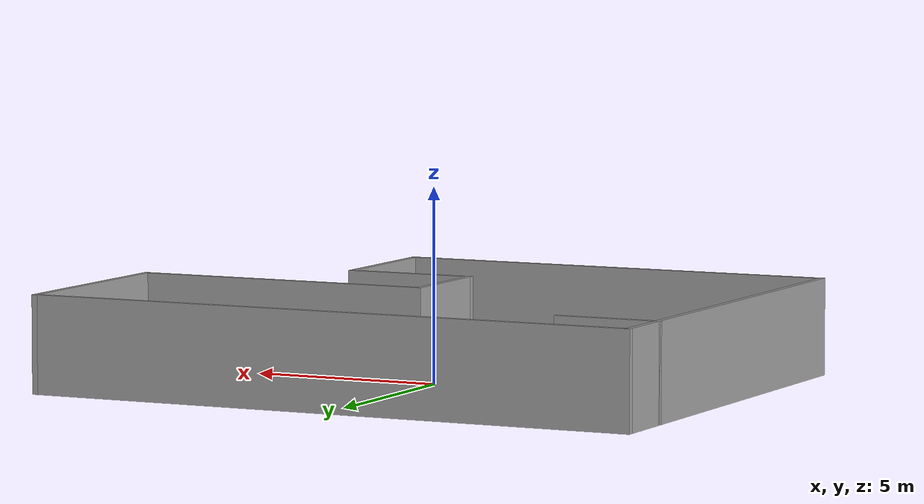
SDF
<?xml version='1.0'?>
<sdf version='1.6'>
  <model name='basic_model'>
    <model name='basic_model.jpg'>
      <pose frame=''>0 3e-06 0 0 -0 0</pose>
      <link name='Wall_29'>
        <collision name='Wall_29_Collision'>
          <geometry>
            <box>
              <size>10.5 0.15 2.5</size>
            </box>
          </geometry>
          <pose frame=''>0 0 1.25 0 -0 0</pose>
        </collision>
        <visual name='Wall_29_Visual'>
          <pose frame=''>0 0 1.25 0 -0 0</pose>
          <geometry>
            <box>
              <size>10.5 0.15 2.5</size>
            </box>
          </geometry>
          <material>
            <script>
              <uri>file://media/materials/scripts/gazebo.material</uri>
              <name>Gazebo/Grey</name>
            </script>
            <ambient>1 1 1 1</ambient>
          </material>
          <meta>
            <layer>0</layer>
          </meta>
        </visual>
        <pose frame=''>-8.05 -0.85 0 0 -0 -1.5708</pose>
      </link>
      <link name='Wall_30'>
        <collision name='Wall_30_Collision'>
          <geometry>
            <box>
              <size>11.75 0.15 2.5</size>
            </box>
          </geometry>
          <pose frame=''>0 0 1.25 0 -0 0</pose>
        </collision>
        <visual name='Wall_30_Visual'>
          <pose frame=''>0 0 1.25 0 -0 0</pose>
          <geometry>
            <box>
              <size>11.75 0.15 2.5</size>
            </box>
          </geometry>
          <material>
            <script>
              <uri>file://media/materials/scripts/gazebo.material</uri>
              <name>Gazebo/Grey</name>
            </script>
            <ambient>1 1 1 1</ambient>
          </material>
          <meta>
            <layer>0</layer>
          </meta>
        </visual>
        <pose frame=''>-2.25 -6.025 0 0 -0 0</pose>
      </link>
      <link name='Wall_31'>
        <collision name='Wall_31_Collision'>
          <geometry>
            <box>
              <size>3.75 0.15 2.5</size>
            </box>
          </geometry>
          <pose frame=''>0 0 1.25 0 -0 0</pose>
        </collision>
        <visual name='Wall_31_Visual'>
          <pose frame=''>0 0 1.25 0 -0 0</pose>
          <geometry>
            <box>
              <size>3.75 0.15 2.5</size>
            </box>
          </geometry>
          <material>
            <script>
              <uri>file://media/materials/scripts/gazebo.material</uri>
              <name>Gazebo/Grey</name>
            </script>
            <ambient>1 1 1 1</ambient>
          </material>
          <meta>
            <layer>0</layer>
          </meta>
        </visual>
        <pose frame=''>3.55 -4.225 0 0 -0 1.5708</pose>
      </link>
      <link name='Wall_32'>
        <collision name='Wall_32_Collision'>
          <geometry>
            <box>
              <size>3.5 0.15 2.5</size>
            </box>
          </geometry>
          <pose frame=''>0 0 1.25 0 -0 0</pose>
        </collision>
        <visual name='Wall_32_Visual'>
          <pose frame=''>0 0 1.25 0 -0 0</pose>
          <geometry>
            <box>
              <size>3.5 0.15 2.5</size>
            </box>
          </geometry>
          <material>
            <script>
              <uri>file://media/materials/scripts/gazebo.material</uri>
              <name>Gazebo/Grey</name>
            </script>
            <ambient>1 1 1 1</ambient>
          </material>
          <meta>
            <layer>0</layer>
          </meta>
        </visual>
        <pose frame=''>1.875 -2.425 0 0 -0 3.14159</pose>
      </link>
      <link name='Wall_33'>
        <collision name='Wall_33_Collision'>
          <geometry>
            <box>
              <size>3 0.15 2.5</size>
            </box>
          </geometry>
          <pose frame=''>0 0 1.25 0 -0 0</pose>
        </collision>
        <visual name='Wall_33_Visual'>
          <pose frame=''>0 0 1.25 0 -0 0</pose>
          <geometry>
            <box>
              <size>3 0.15 2.5</size>
            </box>
          </geometry>
          <material>
            <script>
              <uri>file://media/materials/scripts/gazebo.material</uri>
              <name>Gazebo/Grey</name>
            </script>
            <ambient>1 1 1 1</ambient>
          </material>
          <meta>
            <layer>0</layer>
          </meta>
        </visual>
        <pose frame=''>0.2 -1 0 0 -0 1.5708</pose>
      </link>
      <link name='Wall_34'>
        <collision name='Wall_34_Collision'>
          <geometry>
            <box>
              <size>8 0.15 2.5</size>
            </box>
          </geometry>
          <pose frame=''>0 0 1.25 0 -0 0</pose>
        </collision>
        <visual name='Wall_34_Visual'>
          <pose frame=''>0 0 1.25 0 -0 0</pose>
          <geometry>
            <box>
              <size>8 0.15 2.5</size>
            </box>
          </geometry>
          <material>
            <script>
              <uri>file://media/materials/scripts/gazebo.material</uri>
              <name>Gazebo/Grey</name>
            </script>
            <ambient>1 1 1 1</ambient>
          </material>
          <meta>
            <layer>0</layer>
          </meta>
        </visual>
        <pose frame=''>4.125 0.425 0 0 -0 0</pose>
      </link>
      <link name='Wall_35'>
        <collision name='Wall_35_Collision'>
          <geometry>
            <box>
              <size>5.75 0.15 2.5</size>
            </box>
          </geometry>
          <pose frame=''>0 0 1.25 0 -0 0</pose>
        </collision>
        <visual name='Wall_35_Visual'>
          <pose frame=''>0 0 1.25 0 -0 0</pose>
          <geometry>
            <box>
              <size>5.75 0.15 2.5</size>
            </box>
          </geometry>
          <material>
            <script>
              <uri>file://media/materials/scripts/gazebo.material</uri>
              <name>Gazebo/Grey</name>
            </script>
            <ambient>1 1 1 1</ambient>
          </material>
          <meta>
            <layer>0</layer>
          </meta>
        </visual>
        <pose frame=''>8.05 3.225 0 0 -0 1.5708</pose>
      </link>
      <link name='Wall_36'>
        <collision name='Wall_36_Collision'>
          <geometry>
            <box>
              <size>16.25 0.15 2.5</size>
            </box>
          </geometry>
          <pose frame=''>0 0 1.25 0 -0 0</pose>
        </collision>
        <visual name='Wall_36_Visual'>
          <pose frame=''>0 0 1.25 0 -0 0</pose>
          <geometry>
            <box>
              <size>16.25 0.15 2.5</size>
            </box>
          </geometry>
          <material>
            <script>
              <uri>file://media/materials/scripts/gazebo.material</uri>
              <name>Gazebo/Grey</name>
            </script>
            <ambient>1 1 1 1</ambient>
          </material>
          <meta>
            <layer>0</layer>
          </meta>
        </visual>
        <pose frame=''>-0 6.025 0 0 -0 3.14159</pose>
      </link>
      <link name='Wall_37'>
        <collision name='Wall_37_Collision'>
          <geometry>
            <box>
              <size>1.85 0.15 2.5</size>
            </box>
          </geometry>
          <pose frame=''>0 0 1.25 0 -0 0</pose>
        </collision>
        <visual name='Wall_37_Visual'>
          <pose frame=''>0 0 1.25 0 -0 0</pose>
          <geometry>
            <box>
              <size>1.85 0.15 2.5</size>
            </box>
          </geometry>
          <material>
            <script>
              <uri>file://media/materials/scripts/gazebo.material</uri>
              <name>Gazebo/Grey</name>
            </script>
            <ambient>1 1 1 1</ambient>
          </material>
          <meta>
            <layer>0</layer>
          </meta>
        </visual>
        <pose frame=''>-8.05 5.175 0 0 -0 -1.5708</pose>
      </link>
      <link name='Wall_38'>
        <collision name='Wall_38_Collision'>
          <geometry>
            <box>
              <size>2.75 0.15 2.5</size>
            </box>
          </geometry>
          <pose frame=''>0 0 1.25 0 -0 0</pose>
        </collision>
        <visual name='Wall_38_Visual'>
          <pose frame=''>0 0 1.25 0 -0 0</pose>
          <geometry>
            <box>
              <size>2.75 0.15 2.5</size>
            </box>
          </geometry>
          <material>
            <script>
              <uri>file://media/materials/scripts/gazebo.material</uri>
              <name>Gazebo/Grey</name>
            </script>
            <ambient>1 1 1 1</ambient>
          </material>
          <meta>
            <layer>0</layer>
          </meta>
        </visual>
        <pose frame=''>-6.75 4.325 0 0 -0 0</pose>
      </link>
      <static>1</static>
    </model>
    <static>0</static>
    <allow_auto_disable>1</allow_auto_disable>
  </model>
</sdf>
